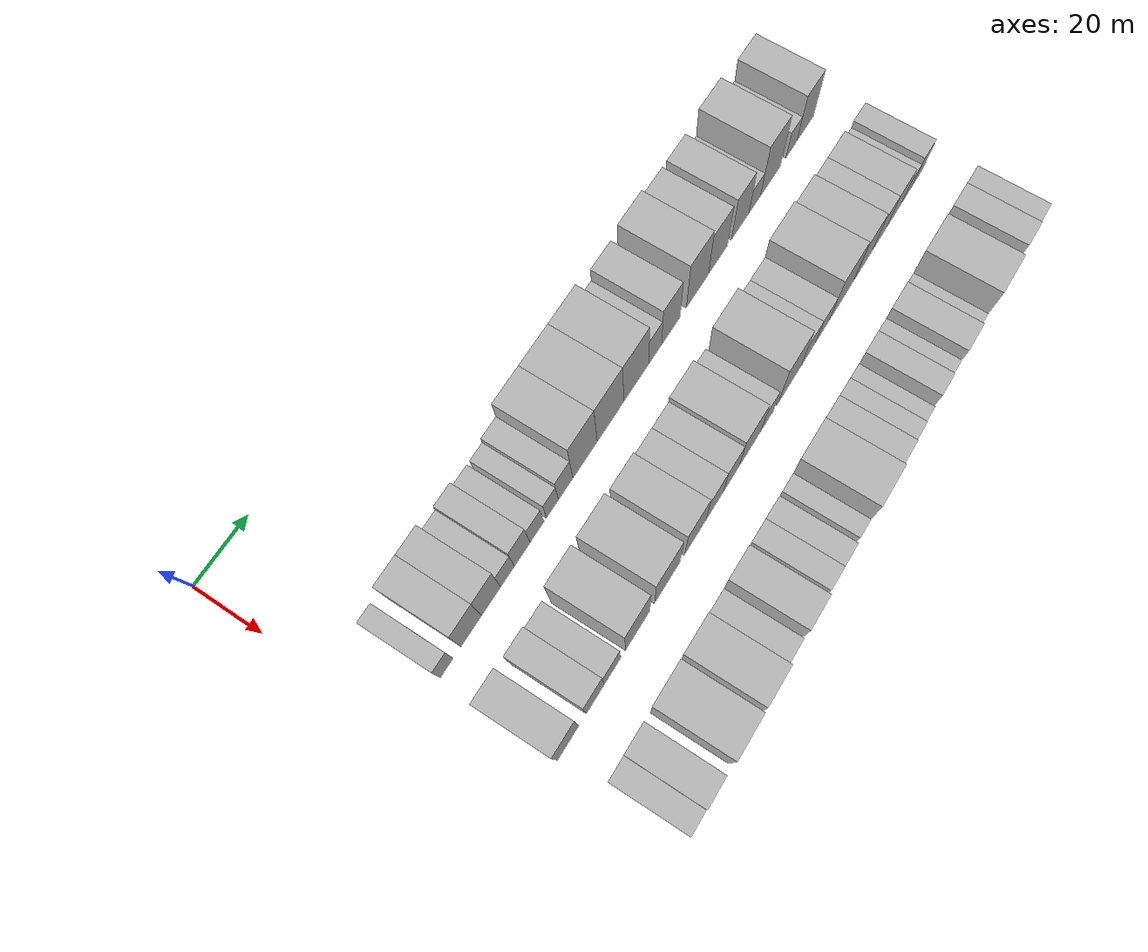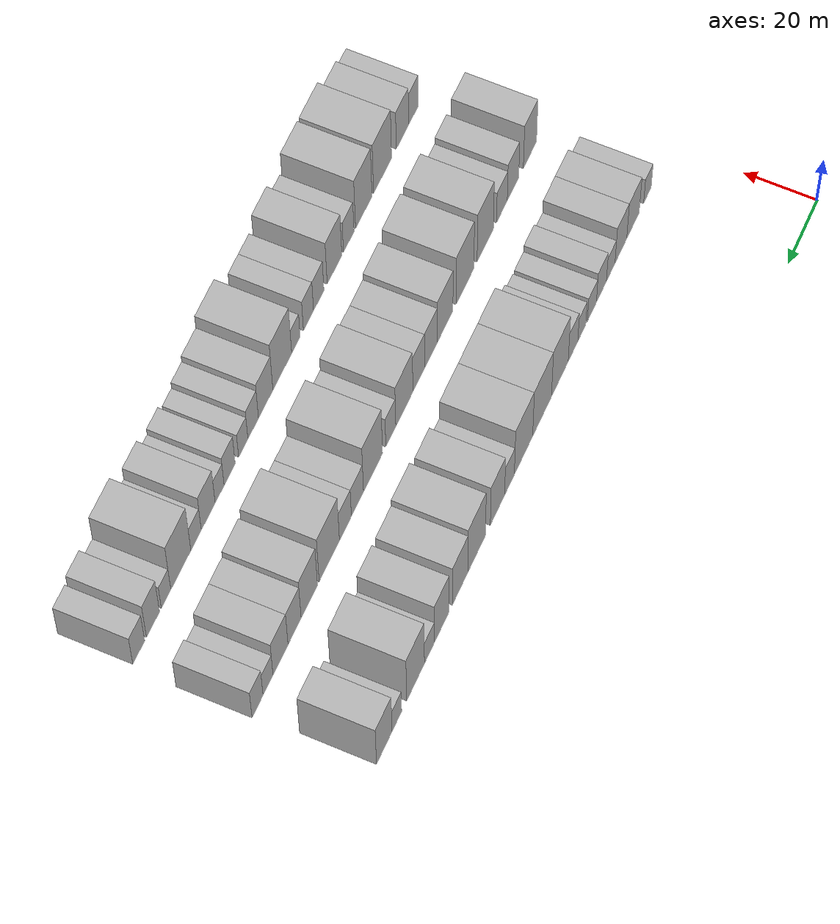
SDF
<sdf version="1.6">
 <world name="default">
  <model name="building_39">
   <static>1</static>
   <pose>50.0000 16.0215 0 0.000000 0.000000 0.000000</pose>
   <link name="link">
    <pose>0 0 6.00 0 0 0</pose>
    <collision name="collision"><geometry><box><size>20.0000 5.0427 12.0000</size></box></geometry></collision>
    <visual name="visual">
     <cast_shadows>0</cast_shadows>
     <geometry><box><size>20.0000 5.0427 12.0000</size></box></geometry>
     <material>
      <script>
       <uri>model://HANNAS_wall/materials/scripts</uri>
       <uri>model://HANNAS_wall/materials/textures</uri>
       <name>vrc/HANNAS_wall</name>
      </script>
     </material>
    </visual>
   </link>
  </model>
  <model name="building_40">
   <static>1</static>
   <pose>50.0000 25.6742 0 0.000000 0.000000 0.000000</pose>
   <link name="link">
    <pose>0 0 9.00 0 0 0</pose>
    <collision name="collision"><geometry><box><size>20.0000 8.2626 18.0000</size></box></geometry></collision>
    <visual name="visual">
     <cast_shadows>0</cast_shadows>
     <geometry><box><size>20.0000 8.2626 18.0000</size></box></geometry>
     <material>
      <script>
       <uri>model://HANNAS_wall/materials/scripts</uri>
       <uri>model://HANNAS_wall/materials/textures</uri>
       <name>vrc/HANNAS_wall</name>
      </script>
     </material>
    </visual>
   </link>
  </model>
  <model name="building_41">
   <static>1</static>
   <pose>50.0000 33.6685 0 0.000000 0.000000 0.000000</pose>
   <link name="link">
    <pose>0 0 9.00 0 0 0</pose>
    <collision name="collision"><geometry><box><size>20.0000 7.7261 18.0000</size></box></geometry></collision>
    <visual name="visual">
     <cast_shadows>0</cast_shadows>
     <geometry><box><size>20.0000 7.7261 18.0000</size></box></geometry>
     <material>
      <script>
       <uri>model://HANNAS_wall/materials/scripts</uri>
       <uri>model://HANNAS_wall/materials/textures</uri>
       <name>vrc/HANNAS_wall</name>
      </script>
     </material>
    </visual>
   </link>
  </model>
  <model name="building_42">
   <static>1</static>
   <pose>50.0000 40.3469 0 0.000000 0.000000 0.000000</pose>
   <link name="link">
    <pose>0 0 6.00 0 0 0</pose>
    <collision name="collision"><geometry><box><size>20.0000 5.6309 12.0000</size></box></geometry></collision>
    <visual name="visual">
     <cast_shadows>0</cast_shadows>
     <geometry><box><size>20.0000 5.6309 12.0000</size></box></geometry>
     <material>
      <script>
       <uri>model://HANNAS_wall/materials/scripts</uri>
       <uri>model://HANNAS_wall/materials/textures</uri>
       <name>vrc/HANNAS_wall</name>
      </script>
     </material>
    </visual>
   </link>
  </model>
  <model name="building_43">
   <static>1</static>
   <pose>50.0000 46.4222 0 0.000000 0.000000 0.000000</pose>
   <link name="link">
    <pose>0 0 7.50 0 0 0</pose>
    <collision name="collision"><geometry><box><size>20.0000 6.5196 15.0000</size></box></geometry></collision>
    <visual name="visual">
     <cast_shadows>0</cast_shadows>
     <geometry><box><size>20.0000 6.5196 15.0000</size></box></geometry>
     <material>
      <script>
       <uri>model://HANNAS_wall/materials/scripts</uri>
       <uri>model://HANNAS_wall/materials/textures</uri>
       <name>vrc/HANNAS_wall</name>
      </script>
     </material>
    </visual>
   </link>
  </model>
  <model name="building_44">
   <static>1</static>
   <pose>50.0000 52.6147 0 0.000000 0.000000 0.000000</pose>
   <link name="link">
    <pose>0 0 6.00 0 0 0</pose>
    <collision name="collision"><geometry><box><size>20.0000 5.8656 12.0000</size></box></geometry></collision>
    <visual name="visual">
     <cast_shadows>0</cast_shadows>
     <geometry><box><size>20.0000 5.8656 12.0000</size></box></geometry>
     <material>
      <script>
       <uri>model://HANNAS_wall/materials/scripts</uri>
       <uri>model://HANNAS_wall/materials/textures</uri>
       <name>vrc/HANNAS_wall</name>
      </script>
     </material>
    </visual>
   </link>
  </model>
  <model name="building_45">
   <static>1</static>
   <pose>50.0000 59.1425 0 0.000000 0.000000 0.000000</pose>
   <link name="link">
    <pose>0 0 6.00 0 0 0</pose>
    <collision name="collision"><geometry><box><size>20.0000 5.1899 12.0000</size></box></geometry></collision>
    <visual name="visual">
     <cast_shadows>0</cast_shadows>
     <geometry><box><size>20.0000 5.1899 12.0000</size></box></geometry>
     <material>
      <script>
       <uri>model://HANNAS_wall/materials/scripts</uri>
       <uri>model://HANNAS_wall/materials/textures</uri>
       <name>vrc/HANNAS_wall</name>
      </script>
     </material>
    </visual>
   </link>
  </model>
  <model name="building_46">
   <static>1</static>
   <pose>50.0000 64.8437 0 0.000000 0.000000 0.000000</pose>
   <link name="link">
    <pose>0 0 7.50 0 0 0</pose>
    <collision name="collision"><geometry><box><size>20.0000 6.2126 15.0000</size></box></geometry></collision>
    <visual name="visual">
     <cast_shadows>0</cast_shadows>
     <geometry><box><size>20.0000 6.2126 15.0000</size></box></geometry>
     <material>
      <script>
       <uri>model://HANNAS_wall/materials/scripts</uri>
       <uri>model://HANNAS_wall/materials/textures</uri>
       <name>vrc/HANNAS_wall</name>
      </script>
     </material>
    </visual>
   </link>
  </model>
  <model name="building_47">
   <static>1</static>
   <pose>50.0000 73.2977 0 0.000000 0.000000 0.000000</pose>
   <link name="link">
    <pose>0 0 12.00 0 0 0</pose>
    <collision name="collision"><geometry><box><size>20.0000 10.6954 24.0000</size></box></geometry></collision>
    <visual name="visual">
     <cast_shadows>0</cast_shadows>
     <geometry><box><size>20.0000 10.6954 24.0000</size></box></geometry>
     <material>
      <script>
       <uri>model://HANNAS_wall/materials/scripts</uri>
       <uri>model://HANNAS_wall/materials/textures</uri>
       <name>vrc/HANNAS_wall</name>
      </script>
     </material>
    </visual>
   </link>
  </model>
  <model name="building_48">
   <static>1</static>
   <pose>50.0000 84.5868 0 0.000000 0.000000 0.000000</pose>
   <link name="link">
    <pose>0 0 12.00 0 0 0</pose>
    <collision name="collision"><geometry><box><size>20.0000 11.8827 24.0000</size></box></geometry></collision>
    <visual name="visual">
     <cast_shadows>0</cast_shadows>
     <geometry><box><size>20.0000 11.8827 24.0000</size></box></geometry>
     <material>
      <script>
       <uri>model://HANNAS_wall/materials/scripts</uri>
       <uri>model://HANNAS_wall/materials/textures</uri>
       <name>vrc/HANNAS_wall</name>
      </script>
     </material>
    </visual>
   </link>
  </model>
  <model name="building_49">
   <static>1</static>
   <pose>50.0000 96.2651 0 0.000000 0.000000 0.000000</pose>
   <link name="link">
    <pose>0 0 12.00 0 0 0</pose>
    <collision name="collision"><geometry><box><size>20.0000 11.4740 24.0000</size></box></geometry></collision>
    <visual name="visual">
     <cast_shadows>0</cast_shadows>
     <geometry><box><size>20.0000 11.4740 24.0000</size></box></geometry>
     <material>
      <script>
       <uri>model://HANNAS_wall/materials/scripts</uri>
       <uri>model://HANNAS_wall/materials/textures</uri>
       <name>vrc/HANNAS_wall</name>
      </script>
     </material>
    </visual>
   </link>
  </model>
  <model name="building_50">
   <static>1</static>
   <pose>50.0000 105.0200 0 0.000000 0.000000 0.000000</pose>
   <link name="link">
    <pose>0 0 7.50 0 0 0</pose>
    <collision name="collision"><geometry><box><size>20.0000 6.0358 15.0000</size></box></geometry></collision>
    <visual name="visual">
     <cast_shadows>0</cast_shadows>
     <geometry><box><size>20.0000 6.0358 15.0000</size></box></geometry>
     <material>
      <script>
       <uri>model://HANNAS_wall/materials/scripts</uri>
       <uri>model://HANNAS_wall/materials/textures</uri>
       <name>vrc/HANNAS_wall</name>
      </script>
     </material>
    </visual>
   </link>
  </model>
  <model name="building_51">
   <static>1</static>
   <pose>50.0000 112.4565 0 0.000000 0.000000 0.000000</pose>
   <link name="link">
    <pose>0 0 10.50 0 0 0</pose>
    <collision name="collision"><geometry><box><size>20.0000 8.8372 21.0000</size></box></geometry></collision>
    <visual name="visual">
     <cast_shadows>0</cast_shadows>
     <geometry><box><size>20.0000 8.8372 21.0000</size></box></geometry>
     <material>
      <script>
       <uri>model://HANNAS_wall/materials/scripts</uri>
       <uri>model://HANNAS_wall/materials/textures</uri>
       <name>vrc/HANNAS_wall</name>
      </script>
     </material>
    </visual>
   </link>
  </model>
  <model name="building_52">
   <static>1</static>
   <pose>50.0000 125.2508 0 0.000000 0.000000 0.000000</pose>
   <link name="link">
    <pose>0 0 12.00 0 0 0</pose>
    <collision name="collision"><geometry><box><size>20.0000 10.7513 24.0000</size></box></geometry></collision>
    <visual name="visual">
     <cast_shadows>0</cast_shadows>
     <geometry><box><size>20.0000 10.7513 24.0000</size></box></geometry>
     <material>
      <script>
       <uri>model://HANNAS_wall/materials/scripts</uri>
       <uri>model://HANNAS_wall/materials/textures</uri>
       <name>vrc/HANNAS_wall</name>
      </script>
     </material>
    </visual>
   </link>
  </model>
  <model name="building_53">
   <static>1</static>
   <pose>50.0000 135.3227 0 0.000000 0.000000 0.000000</pose>
   <link name="link">
    <pose>0 0 10.50 0 0 0</pose>
    <collision name="collision"><geometry><box><size>20.0000 9.3926 21.0000</size></box></geometry></collision>
    <visual name="visual">
     <cast_shadows>0</cast_shadows>
     <geometry><box><size>20.0000 9.3926 21.0000</size></box></geometry>
     <material>
      <script>
       <uri>model://HANNAS_wall/materials/scripts</uri>
       <uri>model://HANNAS_wall/materials/textures</uri>
       <name>vrc/HANNAS_wall</name>
      </script>
     </material>
    </visual>
   </link>
  </model>
  <model name="building_54">
   <static>1</static>
   <pose>50.0000 146.4095 0 0.000000 0.000000 0.000000</pose>
   <link name="link">
    <pose>0 0 10.50 0 0 0</pose>
    <collision name="collision"><geometry><box><size>20.0000 8.7809 21.0000</size></box></geometry></collision>
    <visual name="visual">
     <cast_shadows>0</cast_shadows>
     <geometry><box><size>20.0000 8.7809 21.0000</size></box></geometry>
     <material>
      <script>
       <uri>model://HANNAS_wall/materials/scripts</uri>
       <uri>model://HANNAS_wall/materials/textures</uri>
       <name>vrc/HANNAS_wall</name>
      </script>
     </material>
    </visual>
   </link>
  </model>
  <model name="building_55">
   <static>1</static>
   <pose>50.0000 153.7830 0 0.000000 0.000000 0.000000</pose>
   <link name="link">
    <pose>0 0 6.00 0 0 0</pose>
    <collision name="collision"><geometry><box><size>20.0000 5.9661 12.0000</size></box></geometry></collision>
    <visual name="visual">
     <cast_shadows>0</cast_shadows>
     <geometry><box><size>20.0000 5.9661 12.0000</size></box></geometry>
     <material>
      <script>
       <uri>model://HANNAS_wall/materials/scripts</uri>
       <uri>model://HANNAS_wall/materials/textures</uri>
       <name>vrc/HANNAS_wall</name>
      </script>
     </material>
    </visual>
   </link>
  </model>
  <model name="building_56">
   <static>1</static>
   <pose>50.0000 162.0138 0 0.000000 0.000000 0.000000</pose>
   <link name="link">
    <pose>0 0 12.00 0 0 0</pose>
    <collision name="collision"><geometry><box><size>20.0000 10.4956 24.0000</size></box></geometry></collision>
    <visual name="visual">
     <cast_shadows>0</cast_shadows>
     <geometry><box><size>20.0000 10.4956 24.0000</size></box></geometry>
     <material>
      <script>
       <uri>model://HANNAS_wall/materials/scripts</uri>
       <uri>model://HANNAS_wall/materials/textures</uri>
       <name>vrc/HANNAS_wall</name>
      </script>
     </material>
    </visual>
   </link>
  </model>
  <model name="building_57">
   <static>1</static>
   <pose>50.0000 173.0753 0 0.000000 0.000000 0.000000</pose>
   <link name="link">
    <pose>0 0 6.00 0 0 0</pose>
    <collision name="collision"><geometry><box><size>20.0000 5.6274 12.0000</size></box></geometry></collision>
    <visual name="visual">
     <cast_shadows>0</cast_shadows>
     <geometry><box><size>20.0000 5.6274 12.0000</size></box></geometry>
     <material>
      <script>
       <uri>model://HANNAS_wall/materials/scripts</uri>
       <uri>model://HANNAS_wall/materials/textures</uri>
       <name>vrc/HANNAS_wall</name>
      </script>
     </material>
    </visual>
   </link>
  </model>
  <model name="building_58">
   <static>1</static>
   <pose>50.0000 180.4229 0 0.000000 0.000000 0.000000</pose>
   <link name="link">
    <pose>0 0 10.50 0 0 0</pose>
    <collision name="collision"><geometry><box><size>20.0000 9.0678 21.0000</size></box></geometry></collision>
    <visual name="visual">
     <cast_shadows>0</cast_shadows>
     <geometry><box><size>20.0000 9.0678 21.0000</size></box></geometry>
     <material>
      <script>
       <uri>model://HANNAS_wall/materials/scripts</uri>
       <uri>model://HANNAS_wall/materials/textures</uri>
       <name>vrc/HANNAS_wall</name>
      </script>
     </material>
    </visual>
   </link>
  </model>
  <model name="building_119">
   <static>1</static>
   <pose>82.0000 17.0330 0 0.000000 0.000000 0.000000</pose>
   <link name="link">
    <pose>0 0 10.50 0 0 0</pose>
    <collision name="collision"><geometry><box><size>20.0000 8.5832 21.0000</size></box></geometry></collision>
    <visual name="visual">
     <cast_shadows>0</cast_shadows>
     <geometry><box><size>20.0000 8.5832 21.0000</size></box></geometry>
     <material>
      <script>
       <uri>model://HANNAS_wall/materials/scripts</uri>
       <uri>model://HANNAS_wall/materials/textures</uri>
       <name>vrc/HANNAS_wall</name>
      </script>
     </material>
    </visual>
   </link>
  </model>
  <model name="building_120">
   <static>1</static>
   <pose>82.0000 28.0193 0 0.000000 0.000000 0.000000</pose>
   <link name="link">
    <pose>0 0 9.00 0 0 0</pose>
    <collision name="collision"><geometry><box><size>20.0000 7.3894 18.0000</size></box></geometry></collision>
    <visual name="visual">
     <cast_shadows>0</cast_shadows>
     <geometry><box><size>20.0000 7.3894 18.0000</size></box></geometry>
     <material>
      <script>
       <uri>model://HANNAS_wall/materials/scripts</uri>
       <uri>model://HANNAS_wall/materials/textures</uri>
       <name>vrc/HANNAS_wall</name>
      </script>
     </material>
    </visual>
   </link>
  </model>
  <model name="building_121">
   <static>1</static>
   <pose>82.0000 35.1658 0 0.000000 0.000000 0.000000</pose>
   <link name="link">
    <pose>0 0 7.50 0 0 0</pose>
    <collision name="collision"><geometry><box><size>20.0000 6.9035 15.0000</size></box></geometry></collision>
    <visual name="visual">
     <cast_shadows>0</cast_shadows>
     <geometry><box><size>20.0000 6.9035 15.0000</size></box></geometry>
     <material>
      <script>
       <uri>model://HANNAS_wall/materials/scripts</uri>
       <uri>model://HANNAS_wall/materials/textures</uri>
       <name>vrc/HANNAS_wall</name>
      </script>
     </material>
    </visual>
   </link>
  </model>
  <model name="building_122">
   <static>1</static>
   <pose>82.0000 45.8127 0 0.000000 0.000000 0.000000</pose>
   <link name="link">
    <pose>0 0 12.00 0 0 0</pose>
    <collision name="collision"><geometry><box><size>20.0000 10.3903 24.0000</size></box></geometry></collision>
    <visual name="visual">
     <cast_shadows>0</cast_shadows>
     <geometry><box><size>20.0000 10.3903 24.0000</size></box></geometry>
     <material>
      <script>
       <uri>model://HANNAS_wall/materials/scripts</uri>
       <uri>model://HANNAS_wall/materials/textures</uri>
       <name>vrc/HANNAS_wall</name>
      </script>
     </material>
    </visual>
   </link>
  </model>
  <model name="building_123">
   <static>1</static>
   <pose>82.0000 58.6102 0 0.000000 0.000000 0.000000</pose>
   <link name="link">
    <pose>0 0 12.00 0 0 0</pose>
    <collision name="collision"><geometry><box><size>20.0000 11.2048 24.0000</size></box></geometry></collision>
    <visual name="visual">
     <cast_shadows>0</cast_shadows>
     <geometry><box><size>20.0000 11.2048 24.0000</size></box></geometry>
     <material>
      <script>
       <uri>model://HANNAS_wall/materials/scripts</uri>
       <uri>model://HANNAS_wall/materials/textures</uri>
       <name>vrc/HANNAS_wall</name>
      </script>
     </material>
    </visual>
   </link>
  </model>
  <model name="building_124">
   <static>1</static>
   <pose>82.0000 71.0512 0 0.000000 0.000000 0.000000</pose>
   <link name="link">
    <pose>0 0 10.50 0 0 0</pose>
    <collision name="collision"><geometry><box><size>20.0000 9.6771 21.0000</size></box></geometry></collision>
    <visual name="visual">
     <cast_shadows>0</cast_shadows>
     <geometry><box><size>20.0000 9.6771 21.0000</size></box></geometry>
     <material>
      <script>
       <uri>model://HANNAS_wall/materials/scripts</uri>
       <uri>model://HANNAS_wall/materials/textures</uri>
       <name>vrc/HANNAS_wall</name>
      </script>
     </material>
    </visual>
   </link>
  </model>
  <model name="building_125">
   <static>1</static>
   <pose>82.0000 79.8283 0 0.000000 0.000000 0.000000</pose>
   <link name="link">
    <pose>0 0 9.00 0 0 0</pose>
    <collision name="collision"><geometry><box><size>20.0000 7.8770 18.0000</size></box></geometry></collision>
    <visual name="visual">
     <cast_shadows>0</cast_shadows>
     <geometry><box><size>20.0000 7.8770 18.0000</size></box></geometry>
     <material>
      <script>
       <uri>model://HANNAS_wall/materials/scripts</uri>
       <uri>model://HANNAS_wall/materials/textures</uri>
       <name>vrc/HANNAS_wall</name>
      </script>
     </material>
    </visual>
   </link>
  </model>
  <model name="building_126">
   <static>1</static>
   <pose>82.0000 87.4071 0 0.000000 0.000000 0.000000</pose>
   <link name="link">
    <pose>0 0 9.00 0 0 0</pose>
    <collision name="collision"><geometry><box><size>20.0000 7.2806 18.0000</size></box></geometry></collision>
    <visual name="visual">
     <cast_shadows>0</cast_shadows>
     <geometry><box><size>20.0000 7.2806 18.0000</size></box></geometry>
     <material>
      <script>
       <uri>model://HANNAS_wall/materials/scripts</uri>
       <uri>model://HANNAS_wall/materials/textures</uri>
       <name>vrc/HANNAS_wall</name>
      </script>
     </material>
    </visual>
   </link>
  </model>
  <model name="building_127">
   <static>1</static>
   <pose>82.0000 96.2848 0 0.000000 0.000000 0.000000</pose>
   <link name="link">
    <pose>0 0 10.50 0 0 0</pose>
    <collision name="collision"><geometry><box><size>20.0000 10.4748 21.0000</size></box></geometry></collision>
    <visual name="visual">
     <cast_shadows>0</cast_shadows>
     <geometry><box><size>20.0000 10.4748 21.0000</size></box></geometry>
     <material>
      <script>
       <uri>model://HANNAS_wall/materials/scripts</uri>
       <uri>model://HANNAS_wall/materials/textures</uri>
       <name>vrc/HANNAS_wall</name>
      </script>
     </material>
    </visual>
   </link>
  </model>
  <model name="building_128">
   <static>1</static>
   <pose>82.0000 104.5471 0 0.000000 0.000000 0.000000</pose>
   <link name="link">
    <pose>0 0 7.50 0 0 0</pose>
    <collision name="collision"><geometry><box><size>20.0000 6.0499 15.0000</size></box></geometry></collision>
    <visual name="visual">
     <cast_shadows>0</cast_shadows>
     <geometry><box><size>20.0000 6.0499 15.0000</size></box></geometry>
     <material>
      <script>
       <uri>model://HANNAS_wall/materials/scripts</uri>
       <uri>model://HANNAS_wall/materials/textures</uri>
       <name>vrc/HANNAS_wall</name>
      </script>
     </material>
    </visual>
   </link>
  </model>
  <model name="building_129">
   <static>1</static>
   <pose>82.0000 115.2882 0 0.000000 0.000000 0.000000</pose>
   <link name="link">
    <pose>0 0 12.00 0 0 0</pose>
    <collision name="collision"><geometry><box><size>20.0000 11.4322 24.0000</size></box></geometry></collision>
    <visual name="visual">
     <cast_shadows>0</cast_shadows>
     <geometry><box><size>20.0000 11.4322 24.0000</size></box></geometry>
     <material>
      <script>
       <uri>model://HANNAS_wall/materials/scripts</uri>
       <uri>model://HANNAS_wall/materials/textures</uri>
       <name>vrc/HANNAS_wall</name>
      </script>
     </material>
    </visual>
   </link>
  </model>
  <model name="building_130">
   <static>1</static>
   <pose>82.0000 124.6313 0 0.000000 0.000000 0.000000</pose>
   <link name="link">
    <pose>0 0 7.50 0 0 0</pose>
    <collision name="collision"><geometry><box><size>20.0000 7.2538 15.0000</size></box></geometry></collision>
    <visual name="visual">
     <cast_shadows>0</cast_shadows>
     <geometry><box><size>20.0000 7.2538 15.0000</size></box></geometry>
     <material>
      <script>
       <uri>model://HANNAS_wall/materials/scripts</uri>
       <uri>model://HANNAS_wall/materials/textures</uri>
       <name>vrc/HANNAS_wall</name>
      </script>
     </material>
    </visual>
   </link>
  </model>
  <model name="building_131">
   <static>1</static>
   <pose>82.0000 131.7952 0 0.000000 0.000000 0.000000</pose>
   <link name="link">
    <pose>0 0 7.50 0 0 0</pose>
    <collision name="collision"><geometry><box><size>20.0000 7.0741 15.0000</size></box></geometry></collision>
    <visual name="visual">
     <cast_shadows>0</cast_shadows>
     <geometry><box><size>20.0000 7.0741 15.0000</size></box></geometry>
     <material>
      <script>
       <uri>model://HANNAS_wall/materials/scripts</uri>
       <uri>model://HANNAS_wall/materials/textures</uri>
       <name>vrc/HANNAS_wall</name>
      </script>
     </material>
    </visual>
   </link>
  </model>
  <model name="building_132">
   <static>1</static>
   <pose>82.0000 141.3066 0 0.000000 0.000000 0.000000</pose>
   <link name="link">
    <pose>0 0 12.00 0 0 0</pose>
    <collision name="collision"><geometry><box><size>20.0000 11.9488 24.0000</size></box></geometry></collision>
    <visual name="visual">
     <cast_shadows>0</cast_shadows>
     <geometry><box><size>20.0000 11.9488 24.0000</size></box></geometry>
     <material>
      <script>
       <uri>model://HANNAS_wall/materials/scripts</uri>
       <uri>model://HANNAS_wall/materials/textures</uri>
       <name>vrc/HANNAS_wall</name>
      </script>
     </material>
    </visual>
   </link>
  </model>
  <model name="building_133">
   <static>1</static>
   <pose>82.0000 153.0376 0 0.000000 0.000000 0.000000</pose>
   <link name="link">
    <pose>0 0 10.50 0 0 0</pose>
    <collision name="collision"><geometry><box><size>20.0000 9.5131 21.0000</size></box></geometry></collision>
    <visual name="visual">
     <cast_shadows>0</cast_shadows>
     <geometry><box><size>20.0000 9.5131 21.0000</size></box></geometry>
     <material>
      <script>
       <uri>model://HANNAS_wall/materials/scripts</uri>
       <uri>model://HANNAS_wall/materials/textures</uri>
       <name>vrc/HANNAS_wall</name>
      </script>
     </material>
    </visual>
   </link>
  </model>
  <model name="building_134">
   <static>1</static>
   <pose>82.0000 161.5766 0 0.000000 0.000000 0.000000</pose>
   <link name="link">
    <pose>0 0 9.00 0 0 0</pose>
    <collision name="collision"><geometry><box><size>20.0000 7.5648 18.0000</size></box></geometry></collision>
    <visual name="visual">
     <cast_shadows>0</cast_shadows>
     <geometry><box><size>20.0000 7.5648 18.0000</size></box></geometry>
     <material>
      <script>
       <uri>model://HANNAS_wall/materials/scripts</uri>
       <uri>model://HANNAS_wall/materials/textures</uri>
       <name>vrc/HANNAS_wall</name>
      </script>
     </material>
    </visual>
   </link>
  </model>
  <model name="building_135">
   <static>1</static>
   <pose>82.0000 169.6819 0 0.000000 0.000000 0.000000</pose>
   <link name="link">
    <pose>0 0 9.00 0 0 0</pose>
    <collision name="collision"><geometry><box><size>20.0000 8.6458 18.0000</size></box></geometry></collision>
    <visual name="visual">
     <cast_shadows>0</cast_shadows>
     <geometry><box><size>20.0000 8.6458 18.0000</size></box></geometry>
     <material>
      <script>
       <uri>model://HANNAS_wall/materials/scripts</uri>
       <uri>model://HANNAS_wall/materials/textures</uri>
       <name>vrc/HANNAS_wall</name>
      </script>
     </material>
    </visual>
   </link>
  </model>
  <model name="building_136">
   <static>1</static>
   <pose>82.0000 176.8530 0 0.000000 0.000000 0.000000</pose>
   <link name="link">
    <pose>0 0 6.00 0 0 0</pose>
    <collision name="collision"><geometry><box><size>20.0000 5.6965 12.0000</size></box></geometry></collision>
    <visual name="visual">
     <cast_shadows>0</cast_shadows>
     <geometry><box><size>20.0000 5.6965 12.0000</size></box></geometry>
     <material>
      <script>
       <uri>model://HANNAS_wall/materials/scripts</uri>
       <uri>model://HANNAS_wall/materials/textures</uri>
       <name>vrc/HANNAS_wall</name>
      </script>
     </material>
    </visual>
   </link>
  </model>
  <model name="building_137">
   <static>1</static>
   <pose>82.0000 182.8255 0 0.000000 0.000000 0.000000</pose>
   <link name="link">
    <pose>0 0 7.50 0 0 0</pose>
    <collision name="collision"><geometry><box><size>20.0000 6.2484 15.0000</size></box></geometry></collision>
    <visual name="visual">
     <cast_shadows>0</cast_shadows>
     <geometry><box><size>20.0000 6.2484 15.0000</size></box></geometry>
     <material>
      <script>
       <uri>model://HANNAS_wall/materials/scripts</uri>
       <uri>model://HANNAS_wall/materials/textures</uri>
       <name>vrc/HANNAS_wall</name>
      </script>
     </material>
    </visual>
   </link>
  </model>
  <model name="building_199">
   <static>1</static>
   <pose>114.0000 18.0685 0 0.000000 0.000000 0.000000</pose>
   <link name="link">
    <pose>0 0 7.50 0 0 0</pose>
    <collision name="collision"><geometry><box><size>20.0000 6.1677 15.0000</size></box></geometry></collision>
    <visual name="visual">
     <cast_shadows>0</cast_shadows>
     <geometry><box><size>20.0000 6.1677 15.0000</size></box></geometry>
     <material>
      <script>
       <uri>model://HANNAS_wall/materials/scripts</uri>
       <uri>model://HANNAS_wall/materials/textures</uri>
       <name>vrc/HANNAS_wall</name>
      </script>
     </material>
    </visual>
   </link>
  </model>
  <model name="building_200">
   <static>1</static>
   <pose>114.0000 25.0865 0 0.000000 0.000000 0.000000</pose>
   <link name="link">
    <pose>0 0 9.00 0 0 0</pose>
    <collision name="collision"><geometry><box><size>20.0000 7.8683 18.0000</size></box></geometry></collision>
    <visual name="visual">
     <cast_shadows>0</cast_shadows>
     <geometry><box><size>20.0000 7.8683 18.0000</size></box></geometry>
     <material>
      <script>
       <uri>model://HANNAS_wall/materials/scripts</uri>
       <uri>model://HANNAS_wall/materials/textures</uri>
       <name>vrc/HANNAS_wall</name>
      </script>
     </material>
    </visual>
   </link>
  </model>
  <model name="building_201">
   <static>1</static>
   <pose>114.0000 37.6417 0 0.000000 0.000000 0.000000</pose>
   <link name="link">
    <pose>0 0 12.00 0 0 0</pose>
    <collision name="collision"><geometry><box><size>20.0000 11.2420 24.0000</size></box></geometry></collision>
    <visual name="visual">
     <cast_shadows>0</cast_shadows>
     <geometry><box><size>20.0000 11.2420 24.0000</size></box></geometry>
     <material>
      <script>
       <uri>model://HANNAS_wall/materials/scripts</uri>
       <uri>model://HANNAS_wall/materials/textures</uri>
       <name>vrc/HANNAS_wall</name>
      </script>
     </material>
    </visual>
   </link>
  </model>
  <model name="building_202">
   <static>1</static>
   <pose>114.0000 49.3530 0 0.000000 0.000000 0.000000</pose>
   <link name="link">
    <pose>0 0 12.00 0 0 0</pose>
    <collision name="collision"><geometry><box><size>20.0000 10.1806 24.0000</size></box></geometry></collision>
    <visual name="visual">
     <cast_shadows>0</cast_shadows>
     <geometry><box><size>20.0000 10.1806 24.0000</size></box></geometry>
     <material>
      <script>
       <uri>model://HANNAS_wall/materials/scripts</uri>
       <uri>model://HANNAS_wall/materials/textures</uri>
       <name>vrc/HANNAS_wall</name>
      </script>
     </material>
    </visual>
   </link>
  </model>
  <model name="building_203">
   <static>1</static>
   <pose>114.0000 58.6760 0 0.000000 0.000000 0.000000</pose>
   <link name="link">
    <pose>0 0 7.50 0 0 0</pose>
    <collision name="collision"><geometry><box><size>20.0000 6.4655 15.0000</size></box></geometry></collision>
    <visual name="visual">
     <cast_shadows>0</cast_shadows>
     <geometry><box><size>20.0000 6.4655 15.0000</size></box></geometry>
     <material>
      <script>
       <uri>model://HANNAS_wall/materials/scripts</uri>
       <uri>model://HANNAS_wall/materials/textures</uri>
       <name>vrc/HANNAS_wall</name>
      </script>
     </material>
    </visual>
   </link>
  </model>
  <model name="building_204">
   <static>1</static>
   <pose>114.0000 67.3814 0 0.000000 0.000000 0.000000</pose>
   <link name="link">
    <pose>0 0 10.50 0 0 0</pose>
    <collision name="collision"><geometry><box><size>20.0000 8.9452 21.0000</size></box></geometry></collision>
    <visual name="visual">
     <cast_shadows>0</cast_shadows>
     <geometry><box><size>20.0000 8.9452 21.0000</size></box></geometry>
     <material>
      <script>
       <uri>model://HANNAS_wall/materials/scripts</uri>
       <uri>model://HANNAS_wall/materials/textures</uri>
       <name>vrc/HANNAS_wall</name>
      </script>
     </material>
    </visual>
   </link>
  </model>
  <model name="building_205">
   <static>1</static>
   <pose>114.0000 76.9988 0 0.000000 0.000000 0.000000</pose>
   <link name="link">
    <pose>0 0 7.50 0 0 0</pose>
    <collision name="collision"><geometry><box><size>20.0000 6.2896 15.0000</size></box></geometry></collision>
    <visual name="visual">
     <cast_shadows>0</cast_shadows>
     <geometry><box><size>20.0000 6.2896 15.0000</size></box></geometry>
     <material>
      <script>
       <uri>model://HANNAS_wall/materials/scripts</uri>
       <uri>model://HANNAS_wall/materials/textures</uri>
       <name>vrc/HANNAS_wall</name>
      </script>
     </material>
    </visual>
   </link>
  </model>
  <model name="building_206">
   <static>1</static>
   <pose>114.0000 83.1916 0 0.000000 0.000000 0.000000</pose>
   <link name="link">
    <pose>0 0 7.50 0 0 0</pose>
    <collision name="collision"><geometry><box><size>20.0000 6.0961 15.0000</size></box></geometry></collision>
    <visual name="visual">
     <cast_shadows>0</cast_shadows>
     <geometry><box><size>20.0000 6.0961 15.0000</size></box></geometry>
     <material>
      <script>
       <uri>model://HANNAS_wall/materials/scripts</uri>
       <uri>model://HANNAS_wall/materials/textures</uri>
       <name>vrc/HANNAS_wall</name>
      </script>
     </material>
    </visual>
   </link>
  </model>
  <model name="building_207">
   <static>1</static>
   <pose>114.0000 90.7699 0 0.000000 0.000000 0.000000</pose>
   <link name="link">
    <pose>0 0 6.00 0 0 0</pose>
    <collision name="collision"><geometry><box><size>20.0000 5.0603 12.0000</size></box></geometry></collision>
    <visual name="visual">
     <cast_shadows>0</cast_shadows>
     <geometry><box><size>20.0000 5.0603 12.0000</size></box></geometry>
     <material>
      <script>
       <uri>model://HANNAS_wall/materials/scripts</uri>
       <uri>model://HANNAS_wall/materials/textures</uri>
       <name>vrc/HANNAS_wall</name>
      </script>
     </material>
    </visual>
   </link>
  </model>
  <model name="building_208">
   <static>1</static>
   <pose>114.0000 98.8925 0 0.000000 0.000000 0.000000</pose>
   <link name="link">
    <pose>0 0 12.00 0 0 0</pose>
    <collision name="collision"><geometry><box><size>20.0000 11.1849 24.0000</size></box></geometry></collision>
    <visual name="visual">
     <cast_shadows>0</cast_shadows>
     <geometry><box><size>20.0000 11.1849 24.0000</size></box></geometry>
     <material>
      <script>
       <uri>model://HANNAS_wall/materials/scripts</uri>
       <uri>model://HANNAS_wall/materials/textures</uri>
       <name>vrc/HANNAS_wall</name>
      </script>
     </material>
    </visual>
   </link>
  </model>
  <model name="building_209">
   <static>1</static>
   <pose>114.0000 108.7406 0 0.000000 0.000000 0.000000</pose>
   <link name="link">
    <pose>0 0 9.00 0 0 0</pose>
    <collision name="collision"><geometry><box><size>20.0000 8.5113 18.0000</size></box></geometry></collision>
    <visual name="visual">
     <cast_shadows>0</cast_shadows>
     <geometry><box><size>20.0000 8.5113 18.0000</size></box></geometry>
     <material>
      <script>
       <uri>model://HANNAS_wall/materials/scripts</uri>
       <uri>model://HANNAS_wall/materials/textures</uri>
       <name>vrc/HANNAS_wall</name>
      </script>
     </material>
    </visual>
   </link>
  </model>
  <model name="building_210">
   <static>1</static>
   <pose>114.0000 116.1146 0 0.000000 0.000000 0.000000</pose>
   <link name="link">
    <pose>0 0 7.50 0 0 0</pose>
    <collision name="collision"><geometry><box><size>20.0000 6.2369 15.0000</size></box></geometry></collision>
    <visual name="visual">
     <cast_shadows>0</cast_shadows>
     <geometry><box><size>20.0000 6.2369 15.0000</size></box></geometry>
     <material>
      <script>
       <uri>model://HANNAS_wall/materials/scripts</uri>
       <uri>model://HANNAS_wall/materials/textures</uri>
       <name>vrc/HANNAS_wall</name>
      </script>
     </material>
    </visual>
   </link>
  </model>
  <model name="building_211">
   <static>1</static>
   <pose>114.0000 121.9326 0 0.000000 0.000000 0.000000</pose>
   <link name="link">
    <pose>0 0 6.00 0 0 0</pose>
    <collision name="collision"><geometry><box><size>20.0000 5.3991 12.0000</size></box></geometry></collision>
    <visual name="visual">
     <cast_shadows>0</cast_shadows>
     <geometry><box><size>20.0000 5.3991 12.0000</size></box></geometry>
     <material>
      <script>
       <uri>model://HANNAS_wall/materials/scripts</uri>
       <uri>model://HANNAS_wall/materials/textures</uri>
       <name>vrc/HANNAS_wall</name>
      </script>
     </material>
    </visual>
   </link>
  </model>
  <model name="building_212">
   <static>1</static>
   <pose>114.0000 129.8507 0 0.000000 0.000000 0.000000</pose>
   <link name="link">
    <pose>0 0 7.50 0 0 0</pose>
    <collision name="collision"><geometry><box><size>20.0000 6.4370 15.0000</size></box></geometry></collision>
    <visual name="visual">
     <cast_shadows>0</cast_shadows>
     <geometry><box><size>20.0000 6.4370 15.0000</size></box></geometry>
     <material>
      <script>
       <uri>model://HANNAS_wall/materials/scripts</uri>
       <uri>model://HANNAS_wall/materials/textures</uri>
       <name>vrc/HANNAS_wall</name>
      </script>
     </material>
    </visual>
   </link>
  </model>
  <model name="building_213">
   <static>1</static>
   <pose>114.0000 135.6502 0 0.000000 0.000000 0.000000</pose>
   <link name="link">
    <pose>0 0 6.00 0 0 0</pose>
    <collision name="collision"><geometry><box><size>20.0000 5.1621 12.0000</size></box></geometry></collision>
    <visual name="visual">
     <cast_shadows>0</cast_shadows>
     <geometry><box><size>20.0000 5.1621 12.0000</size></box></geometry>
     <material>
      <script>
       <uri>model://HANNAS_wall/materials/scripts</uri>
       <uri>model://HANNAS_wall/materials/textures</uri>
       <name>vrc/HANNAS_wall</name>
      </script>
     </material>
    </visual>
   </link>
  </model>
  <model name="building_214">
   <static>1</static>
   <pose>114.0000 142.2251 0 0.000000 0.000000 0.000000</pose>
   <link name="link">
    <pose>0 0 9.00 0 0 0</pose>
    <collision name="collision"><geometry><box><size>20.0000 7.9878 18.0000</size></box></geometry></collision>
    <visual name="visual">
     <cast_shadows>0</cast_shadows>
     <geometry><box><size>20.0000 7.9878 18.0000</size></box></geometry>
     <material>
      <script>
       <uri>model://HANNAS_wall/materials/scripts</uri>
       <uri>model://HANNAS_wall/materials/textures</uri>
       <name>vrc/HANNAS_wall</name>
      </script>
     </material>
    </visual>
   </link>
  </model>
  <model name="building_215">
   <static>1</static>
   <pose>114.0000 149.2030 0 0.000000 0.000000 0.000000</pose>
   <link name="link">
    <pose>0 0 6.00 0 0 0</pose>
    <collision name="collision"><geometry><box><size>20.0000 5.9680 12.0000</size></box></geometry></collision>
    <visual name="visual">
     <cast_shadows>0</cast_shadows>
     <geometry><box><size>20.0000 5.9680 12.0000</size></box></geometry>
     <material>
      <script>
       <uri>model://HANNAS_wall/materials/scripts</uri>
       <uri>model://HANNAS_wall/materials/textures</uri>
       <name>vrc/HANNAS_wall</name>
      </script>
     </material>
    </visual>
   </link>
  </model>
  <model name="building_216">
   <static>1</static>
   <pose>114.0000 157.8651 0 0.000000 0.000000 0.000000</pose>
   <link name="link">
    <pose>0 0 12.00 0 0 0</pose>
    <collision name="collision"><geometry><box><size>20.0000 11.3562 24.0000</size></box></geometry></collision>
    <visual name="visual">
     <cast_shadows>0</cast_shadows>
     <geometry><box><size>20.0000 11.3562 24.0000</size></box></geometry>
     <material>
      <script>
       <uri>model://HANNAS_wall/materials/scripts</uri>
       <uri>model://HANNAS_wall/materials/textures</uri>
       <name>vrc/HANNAS_wall</name>
      </script>
     </material>
    </visual>
   </link>
  </model>
  <model name="building_217">
   <static>1</static>
   <pose>114.0000 166.2204 0 0.000000 0.000000 0.000000</pose>
   <link name="link">
    <pose>0 0 6.00 0 0 0</pose>
    <collision name="collision"><geometry><box><size>20.0000 5.3546 12.0000</size></box></geometry></collision>
    <visual name="visual">
     <cast_shadows>0</cast_shadows>
     <geometry><box><size>20.0000 5.3546 12.0000</size></box></geometry>
     <material>
      <script>
       <uri>model://HANNAS_wall/materials/scripts</uri>
       <uri>model://HANNAS_wall/materials/textures</uri>
       <name>vrc/HANNAS_wall</name>
      </script>
     </material>
    </visual>
   </link>
  </model>
  <model name="building_218">
   <static>1</static>
   <pose>114.0000 173.5539 0 0.000000 0.000000 0.000000</pose>
   <link name="link">
    <pose>0 0 9.00 0 0 0</pose>
    <collision name="collision"><geometry><box><size>20.0000 7.3123 18.0000</size></box></geometry></collision>
    <visual name="visual">
     <cast_shadows>0</cast_shadows>
     <geometry><box><size>20.0000 7.3123 18.0000</size></box></geometry>
     <material>
      <script>
       <uri>model://HANNAS_wall/materials/scripts</uri>
       <uri>model://HANNAS_wall/materials/textures</uri>
       <name>vrc/HANNAS_wall</name>
      </script>
     </material>
    </visual>
   </link>
  </model>
  <model name="building_219">
   <static>1</static>
   <pose>114.0000 181.5181 0 0.000000 0.000000 0.000000</pose>
   <link name="link">
    <pose>0 0 7.50 0 0 0</pose>
    <collision name="collision"><geometry><box><size>20.0000 6.6161 15.0000</size></box></geometry></collision>
    <visual name="visual">
     <cast_shadows>0</cast_shadows>
     <geometry><box><size>20.0000 6.6161 15.0000</size></box></geometry>
     <material>
      <script>
       <uri>model://HANNAS_wall/materials/scripts</uri>
       <uri>model://HANNAS_wall/materials/textures</uri>
       <name>vrc/HANNAS_wall</name>
      </script>
     </material>
    </visual>
   </link>
  </model>
 </world>
</sdf>
